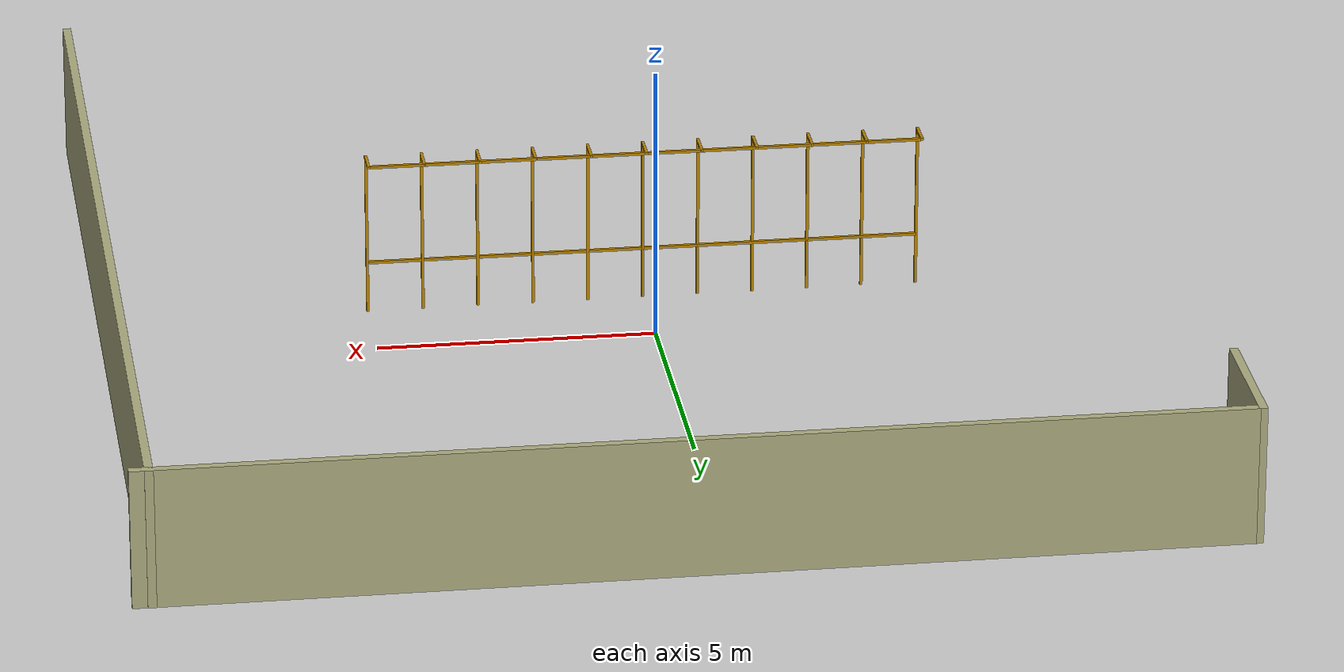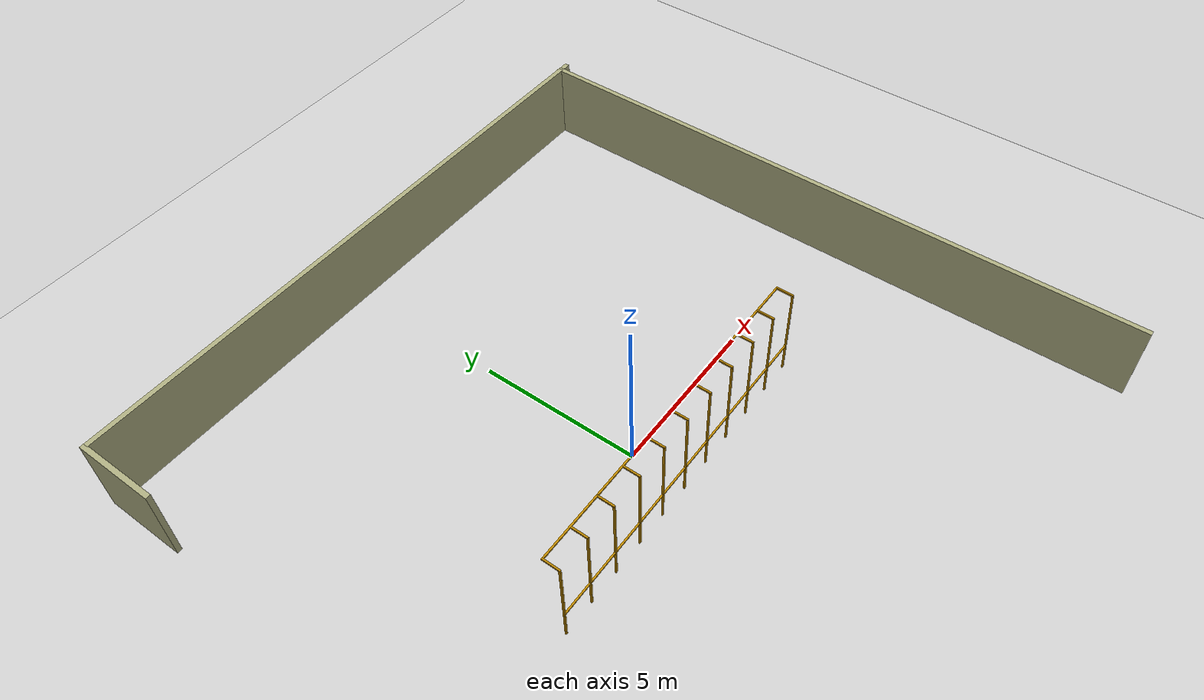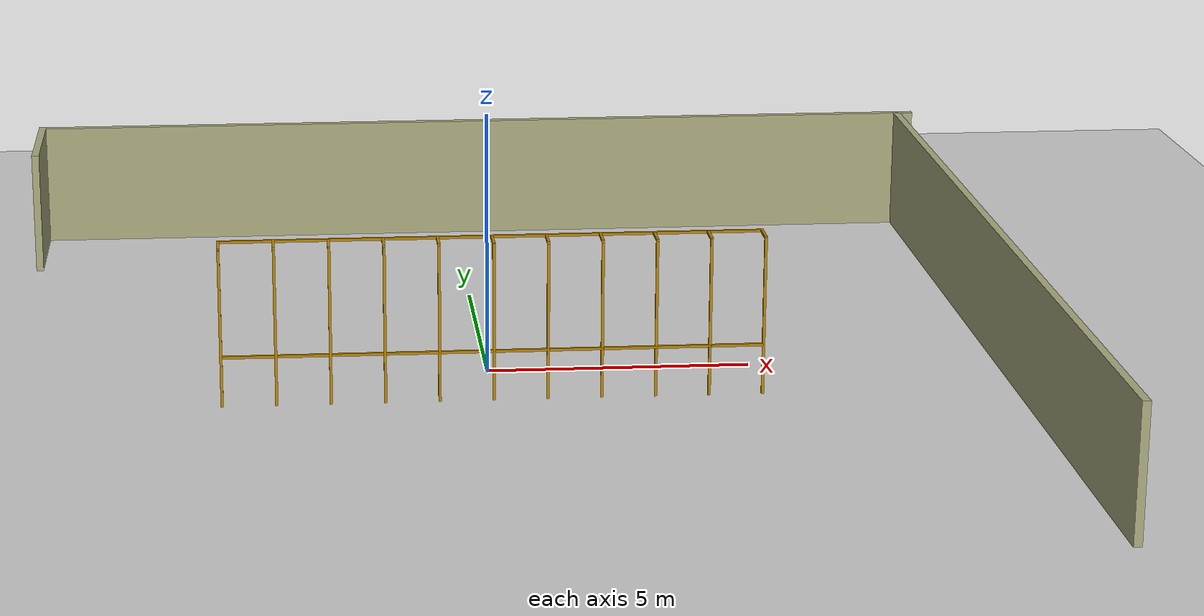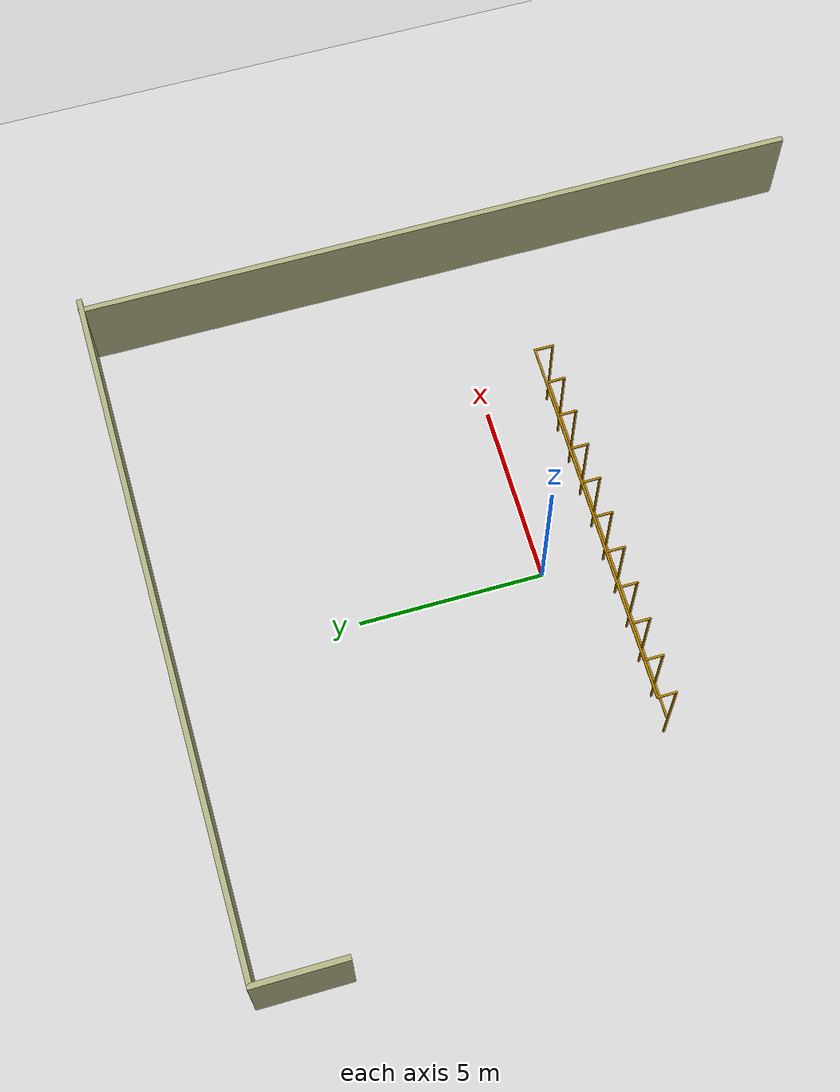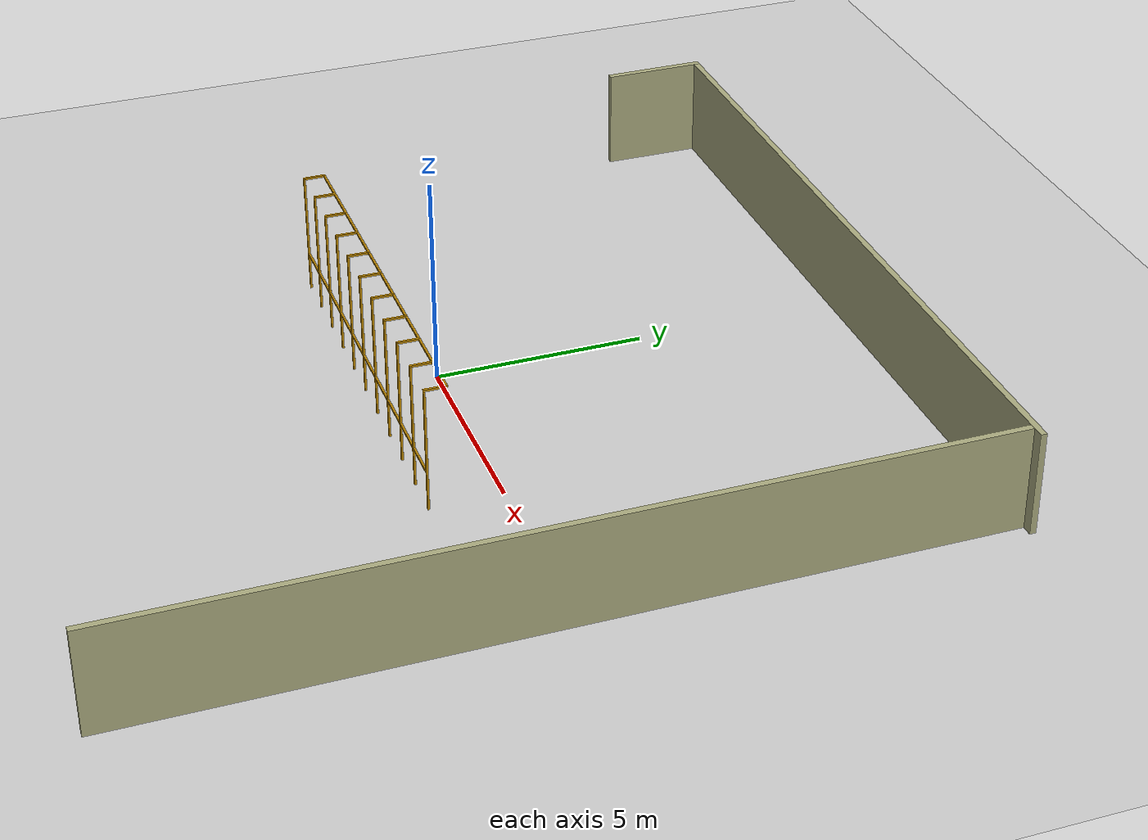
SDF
<sdf version='1.7'>
  <world name='default'>
    <plugin
      filename="gz-sim-physics-system"
      name="gz::sim::systems::Physics">
    </plugin>
    <plugin
      filename="gz-sim-user-commands-system"
      name="gz::sim::systems::UserCommands">
    </plugin>
    <plugin
      filename="gz-sim-scene-broadcaster-system"
      name="gz::sim::systems::SceneBroadcaster">
    </plugin>
    <plugin filename="gz-sim-contact-system"
            name="gz::sim::systems::Contact"/>
    <model name='ground_plane'>
      <static>1</static>
      <link name='link'>
        <collision name='collision'>
          <geometry>
            <plane>
              <normal>0 0 1</normal>
              <size>100 100</size>
            </plane>
          </geometry>
          <surface>
            <friction>
              <ode>
                <mu>100</mu>
                <mu2>50</mu2>
              </ode>
            </friction>
          </surface>
        </collision>
        <visual name='visual'>
          <cast_shadows>0</cast_shadows>
          <geometry>
            <plane>
              <normal>0 0 1</normal>
              <size>100 100</size>
            </plane>
          </geometry>
          <material>
            <script>
              <uri>file://media/materials/scripts/gazebo.material</uri>
              <name>Gazebo/Grey</name>
            </script>
          </material>
        </visual>
      </link>
    </model>
    <light name='sun' type='directional'>
      <cast_shadows>1</cast_shadows>
      <pose>0 0 10 0 -0 0</pose>
      <diffuse>0.8 0.8 0.8 1</diffuse>
      <specular>0.2 0.2 0.2 1</specular>
      <attenuation>
        <range>1000</range>
        <constant>0.9</constant>
        <linear>0.01</linear>
        <quadratic>0.001</quadratic>
      </attenuation>
      <direction>-0.5 0.1 -0.9</direction>
    </light>
    <scene>
      <shadows>1</shadows>
      <ambient>0.4 0.4 0.4 1</ambient>
      <background>0.7 0.7 0.7 1</background>
    </scene>
    <gui fullscreen='0'>
      <camera name='user_camera'>
        <pose>5.7 7.9 4.0 0 0.34 -2.48</pose>
        <view_controller>orbit</view_controller>
        <projection_type>perspective</projection_type>
      </camera>
    </gui>
    <physics name="1ms" type="ignored">
      <max_step_size>0.001</max_step_size>
      <real_time_factor>1.0</real_time_factor>
    </physics>
    <model name='workcell'>
      <static>1</static>
      <link name='link'>
        <visual name='conveyor_frame_1'>
          <pose>0 -1.21 3 0 -0 0</pose>
          <geometry>
            <box>
              <size>10 0.05 0.05</size>
            </box>
          </geometry>
          <material>
            <ambient>0.72549 0.517647 0 1</ambient>
            <diffuse>0.72549 0.517647 0 1</diffuse>
          </material>
        </visual>
        <visual name='conveyor_frame_2'>
          <pose>0 -1.7 0.95 0 -0 0</pose>
          <geometry>
            <box>
              <size>10 0.05 0.05</size>
            </box>
          </geometry>
          <material>
            <ambient>0.72549 0.517647 0 1</ambient>
            <diffuse>0.72549 0.517647 0 1</diffuse>
          </material>
        </visual>
        <visual name='conveyor_frame_3'>
          <pose>5 -1.7 1.5 0 -0 0</pose>
          <geometry>
            <box>
              <size>0.05 0.05 3</size>
            </box>
          </geometry>
          <material>
            <ambient>0.72549 0.517647 0 1</ambient>
            <diffuse>0.72549 0.517647 0 1</diffuse>
          </material>
        </visual>
        <visual name='conveyor_frame_4'>
          <pose>5 -1.455 3 0 -0 0</pose>
          <geometry>
            <box>
              <size>0.05 0.54 0.05</size>
            </box>
          </geometry>
          <material>
            <ambient>0.72549 0.517647 0 1</ambient>
            <diffuse>0.72549 0.517647 0 1</diffuse>
          </material>
        </visual>
        <visual name='conveyor_frame_5'>
          <pose>4 -1.7 1.5 0 -0 0</pose>
          <geometry>
            <box>
              <size>0.05 0.05 3</size>
            </box>
          </geometry>
          <material>
            <ambient>0.72549 0.517647 0 1</ambient>
            <diffuse>0.72549 0.517647 0 1</diffuse>
          </material>
        </visual>
        <visual name='conveyor_frame_6'>
          <pose>4 -1.455 3 0 -0 0</pose>
          <geometry>
            <box>
              <size>0.05 0.54 0.05</size>
            </box>
          </geometry>
          <material>
            <ambient>0.72549 0.517647 0 1</ambient>
            <diffuse>0.72549 0.517647 0 1</diffuse>
          </material>
        </visual>
        <visual name='conveyor_frame_7'>
          <pose>3 -1.7 1.5 0 -0 0</pose>
          <geometry>
            <box>
              <size>0.05 0.05 3</size>
            </box>
          </geometry>
          <material>
            <ambient>0.72549 0.517647 0 1</ambient>
            <diffuse>0.72549 0.517647 0 1</diffuse>
          </material>
        </visual>
        <visual name='conveyor_frame_8'>
          <pose>3 -1.455 3 0 -0 0</pose>
          <geometry>
            <box>
              <size>0.05 0.54 0.05</size>
            </box>
          </geometry>
          <material>
            <ambient>0.72549 0.517647 0 1</ambient>
            <diffuse>0.72549 0.517647 0 1</diffuse>
          </material>
        </visual>
        <visual name='conveyor_frame_9'>
          <pose>2 -1.7 1.5 0 -0 0</pose>
          <geometry>
            <box>
              <size>0.05 0.05 3</size>
            </box>
          </geometry>
          <material>
            <ambient>0.72549 0.517647 0 1</ambient>
            <diffuse>0.72549 0.517647 0 1</diffuse>
          </material>
        </visual>
        <visual name='conveyor_frame_10'>
          <pose>2 -1.455 3 0 -0 0</pose>
          <geometry>
            <box>
              <size>0.05 0.54 0.05</size>
            </box>
          </geometry>
          <material>
            <ambient>0.72549 0.517647 0 1</ambient>
            <diffuse>0.72549 0.517647 0 1</diffuse>
          </material>
        </visual>
        <visual name='conveyor_frame_11'>
          <pose>1 -1.7 1.5 0 -0 0</pose>
          <geometry>
            <box>
              <size>0.05 0.05 3</size>
            </box>
          </geometry>
          <material>
            <ambient>0.72549 0.517647 0 1</ambient>
            <diffuse>0.72549 0.517647 0 1</diffuse>
          </material>
        </visual>
        <visual name='conveyor_frame_12'>
          <pose>1 -1.455 3 0 -0 0</pose>
          <geometry>
            <box>
              <size>0.05 0.54 0.05</size>
            </box>
          </geometry>
          <material>
            <ambient>0.72549 0.517647 0 1</ambient>
            <diffuse>0.72549 0.517647 0 1</diffuse>
          </material>
        </visual>
        <visual name='conveyor_frame_13'>
          <pose>0 -1.7 1.5 0 -0 0</pose>
          <geometry>
            <box>
              <size>0.05 0.05 3</size>
            </box>
          </geometry>
          <material>
            <ambient>0.72549 0.517647 0 1</ambient>
            <diffuse>0.72549 0.517647 0 1</diffuse>
          </material>
        </visual>
        <visual name='conveyor_frame_14'>
          <pose>0 -1.455 3 0 -0 0</pose>
          <geometry>
            <box>
              <size>0.05 0.54 0.05</size>
            </box>
          </geometry>
          <material>
            <ambient>0.72549 0.517647 0 1</ambient>
            <diffuse>0.72549 0.517647 0 1</diffuse>
          </material>
        </visual>
        <visual name='conveyor_frame_15'>
          <pose>-1 -1.7 1.5 0 -0 0</pose>
          <geometry>
            <box>
              <size>0.05 0.05 3</size>
            </box>
          </geometry>
          <material>
            <ambient>0.72549 0.517647 0 1</ambient>
            <diffuse>0.72549 0.517647 0 1</diffuse>
          </material>
        </visual>
        <visual name='conveyor_frame_16'>
          <pose>-1 -1.455 3 0 -0 0</pose>
          <geometry>
            <box>
              <size>0.05 0.54 0.05</size>
            </box>
          </geometry>
          <material>
            <ambient>0.72549 0.517647 0 1</ambient>
            <diffuse>0.72549 0.517647 0 1</diffuse>
          </material>
        </visual>
        <visual name='conveyor_frame_17'>
          <pose>-2 -1.7 1.5 0 -0 0</pose>
          <geometry>
            <box>
              <size>0.05 0.05 3</size>
            </box>
          </geometry>
          <material>
            <ambient>0.72549 0.517647 0 1</ambient>
            <diffuse>0.72549 0.517647 0 1</diffuse>
          </material>
        </visual>
        <visual name='conveyor_frame_18'>
          <pose>-2 -1.455 3 0 -0 0</pose>
          <geometry>
            <box>
              <size>0.05 0.54 0.05</size>
            </box>
          </geometry>
          <material>
            <ambient>0.72549 0.517647 0 1</ambient>
            <diffuse>0.72549 0.517647 0 1</diffuse>
          </material>
        </visual>
        <visual name='conveyor_frame_19'>
          <pose>-3 -1.7 1.5 0 -0 0</pose>
          <geometry>
            <box>
              <size>0.05 0.05 3</size>
            </box>
          </geometry>
          <material>
            <ambient>0.72549 0.517647 0 1</ambient>
            <diffuse>0.72549 0.517647 0 1</diffuse>
          </material>
        </visual>
        <visual name='conveyor_frame_20'>
          <pose>-3 -1.455 3 0 -0 0</pose>
          <geometry>
            <box>
              <size>0.05 0.54 0.05</size>
            </box>
          </geometry>
          <material>
            <ambient>0.72549 0.517647 0 1</ambient>
            <diffuse>0.72549 0.517647 0 1</diffuse>
          </material>
        </visual>
        <visual name='conveyor_frame_21'>
          <pose>-4 -1.7 1.5 0 -0 0</pose>
          <geometry>
            <box>
              <size>0.05 0.05 3</size>
            </box>
          </geometry>
          <material>
            <ambient>0.72549 0.517647 0 1</ambient>
            <diffuse>0.72549 0.517647 0 1</diffuse>
          </material>
        </visual>
        <visual name='conveyor_frame_22'>
          <pose>-4 -1.455 3 0 -0 0</pose>
          <geometry>
            <box>
              <size>0.05 0.54 0.05</size>
            </box>
          </geometry>
          <material>
            <ambient>0.72549 0.517647 0 1</ambient>
            <diffuse>0.72549 0.517647 0 1</diffuse>
          </material>
        </visual>
        <visual name='conveyor_frame_23'>
          <pose>-5 -1.7 1.5 0 -0 0</pose>
          <geometry>
            <box>
              <size>0.05 0.05 3</size>
            </box>
          </geometry>
          <material>
            <ambient>0.72549 0.517647 0 1</ambient>
            <diffuse>0.72549 0.517647 0 1</diffuse>
          </material>
        </visual>
        <visual name='conveyor_frame_24'>
          <pose>-5 -1.455 3 0 -0 0</pose>
          <geometry>
            <box>
              <size>0.05 0.54 0.05</size>
            </box>
          </geometry>
          <material>
            <ambient>0.72549 0.517647 0 1</ambient>
            <diffuse>0.72549 0.517647 0 1</diffuse>
          </material>
        </visual>
      </link>
    </model>
    <model name='IntelAriacWall'>
      <pose>0.579306 0.061913 0 0 -0 0</pose>
      <link name='BoundingWall_1'>
        <visual name='BoundingWall_1_Visual'>
          <pose>0 0 1.25 0 -0 0</pose>
          <geometry>
            <box>
              <size>20 0.15 2.5</size>
            </box>
          </geometry>
          <material>
            <pbr>
              <metal>
                <albedo_map>ceiling_tiled.jpg</albedo_map>
              </metal>
            </pbr>
            <ambient>0.666667 0.666667 0.498039 1</ambient>
          </material>
          <meta>
            <layer>0</layer>
          </meta>
        </visual>
        <pose>9.22505 -0 0 0 -0 -1.5708</pose>
      </link>
      <link name='BoundingWall_4'>
        <visual name='BoundingWall_4_Visual'>
          <pose>0 0 1.25 0 -0 0</pose>
          <geometry>
            <box>
              <size>19 0.15 2.5</size>
            </box>
          </geometry>
          <material>
            <pbr>
              <metal>
                <albedo_map>ceiling_tiled.jpg</albedo_map>
              </metal>
            </pbr>
            <ambient>0.666667 0.666667 0.498039 1</ambient>
          </material>
          <meta>
            <layer>0</layer>
          </meta>
        </visual>
        <pose>0.061877 9.91866 0 0 -0 3.14159</pose>
      </link>
      <link name='BoundingWall_5'>
        <visual name='BoundingWall_5_Visual'>
          <pose>0 0 1.25 0 -0 0</pose>
          <geometry>
            <box>
              <size>2.51365 0.15 2.5</size>
            </box>
          </geometry>
          <material>
            <pbr>
              <metal>
                <albedo_map>ceiling_tiled.jpg</albedo_map>
              </metal>
            </pbr>
            <ambient>0.666667 0.666667 0.498039 1</ambient>
          </material>
          <meta>
            <layer>0</layer>
          </meta>
        </visual>
        <pose>-9.48688 8.73683 0 0 -0 -1.5708</pose>
      </link>
      <static>1</static>
    </model>
    <gravity>0 0 -9.8</gravity>
    <magnetic_field>6e-06 2.3e-05 -4.2e-05</magnetic_field>
    <atmosphere type='adiabatic'/>
  </world>
</sdf>
